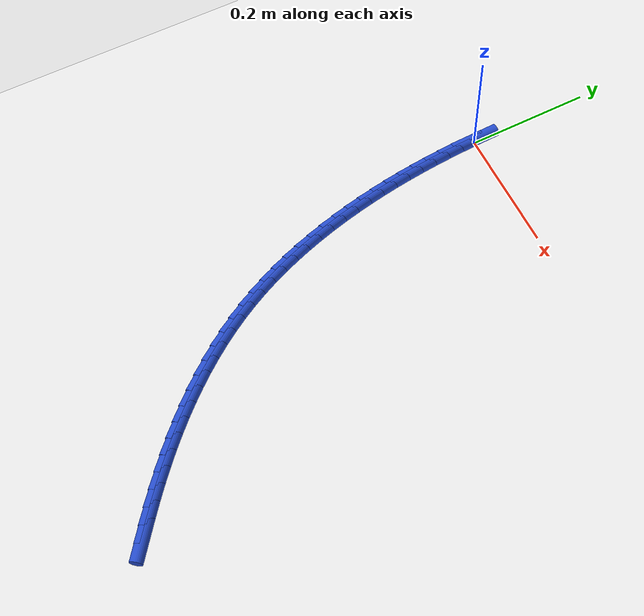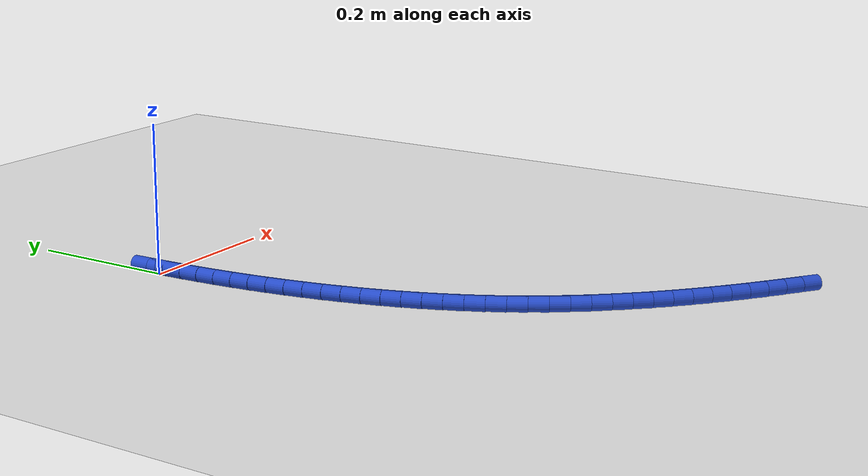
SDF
<sdf version="1.6">
 <world name="default">
  <model name="ground_plane">
   <static>1</static>
   <link name="link">
    <collision name="collision">
     <geometry><plane><normal>0 0 1</normal><size>100 100</size></plane></geometry>
     <surface><friction><ode><mu>100</mu><mu2>50</mu2></ode></friction></surface>
    </collision>
    <visual name="visual">
     <cast_shadows>0</cast_shadows>
     <geometry><plane><normal>0 0 1</normal><size>100 100</size></plane></geometry>
     <material>
      <script><uri>file://media/materials/scripts/gazebo.material</uri><name>Gazebo/WhiteGlow</name></script>
     </material>
    </visual>
   </link>
  </model>
  <model name="line">
   <link name="link_0">
    <pose>-9.432558900623889e-18 4.85722573273506e-17 0.01 0 1.57 -1.5440989932306253</pose>
    <collision name="collision">
     <geometry><cylinder><radius>0.01</radius><length>0.08</length></cylinder></geometry>
    </collision>
    <visual name="visual">
     <material>
      <script><name>Gazebo/Blue</name><uri>file://media/materials/scripts/gazebo.material</uri></script>
     </material>
     <geometry><cylinder><radius>0.01</radius><length>0.08</length></cylinder></geometry>
    </visual>
   </link>
   <link name="link_237">
    <pose>0.36372228921915023 -0.7218449217352954 0.01 0 1.57 -0.6465349389866851</pose>
    <collision name="collision">
     <geometry><cylinder><radius>0.01</radius><length>0.08</length></cylinder></geometry>
    </collision>
    <visual name="visual">
     <material>
      <script><name>Gazebo/Blue</name><uri>file://media/materials/scripts/gazebo.material</uri></script>
     </material>
     <geometry><cylinder><radius>0.01</radius><length>0.08</length></cylinder></geometry>
    </visual>
   </link>
   <link name="link_238">
    <pose>0.34310390192497897 -0.7062831694928421 0.01 0 1.57 -0.6597295838823884</pose>
    <collision name="collision">
     <geometry><cylinder><radius>0.01</radius><length>0.08</length></cylinder></geometry>
    </collision>
    <visual name="visual">
     <material>
      <script><name>Gazebo/Blue</name><uri>file://media/materials/scripts/gazebo.material</uri></script>
     </material>
     <geometry><cylinder><radius>0.01</radius><length>0.08</length></cylinder></geometry>
    </visual>
   </link>
   <link name="link_239">
    <pose>0.3226835436054937 -0.6904436753281677 0.01 0 1.57 -0.6788519430005707</pose>
    <collision name="collision">
     <geometry><cylinder><radius>0.01</radius><length>0.08</length></cylinder></geometry>
    </collision>
    <visual name="visual">
     <material>
      <script><name>Gazebo/Blue</name><uri>file://media/materials/scripts/gazebo.material</uri></script>
     </material>
     <geometry><cylinder><radius>0.01</radius><length>0.08</length></cylinder></geometry>
    </visual>
   </link>
   <link name="link_240">
    <pose>0.3025702603142795 -0.6742169958920953 0.01 0 1.57 -0.7007632244609484</pose>
    <collision name="collision">
     <geometry><cylinder><radius>0.01</radius><length>0.08</length></cylinder></geometry>
    </collision>
    <visual name="visual">
     <material>
      <script><name>Gazebo/Blue</name><uri>file://media/materials/scripts/gazebo.material</uri></script>
     </material>
     <geometry><cylinder><radius>0.01</radius><length>0.08</length></cylinder></geometry>
    </visual>
   </link>
   <link name="link_241">
    <pose>0.28282865347773967 -0.6575630965156987 0.01 0 1.57 -0.7241676684208983</pose>
    <collision name="collision">
     <geometry><cylinder><radius>0.01</radius><length>0.08</length></cylinder></geometry>
    </collision>
    <visual name="visual">
     <material>
      <script><name>Gazebo/Blue</name><uri>file://media/materials/scripts/gazebo.material</uri></script>
     </material>
     <geometry><cylinder><radius>0.01</radius><length>0.08</length></cylinder></geometry>
    </visual>
   </link>
   <link name="link_242">
    <pose>0.2635044393728914 -0.6404714352579243 0.01 0 1.57 -0.7491152092200406</pose>
    <collision name="collision">
     <geometry><cylinder><radius>0.01</radius><length>0.08</length></cylinder></geometry>
    </collision>
    <visual name="visual">
     <material>
      <script><name>Gazebo/Blue</name><uri>file://media/materials/scripts/gazebo.material</uri></script>
     </material>
     <geometry><cylinder><radius>0.01</radius><length>0.08</length></cylinder></geometry>
    </visual>
   </link>
   <link name="link_243">
    <pose>0.2446432652571949 -0.6229315779647986 0.01 0 1.57 -0.7756600971429338</pose>
    <collision name="collision">
     <geometry><cylinder><radius>0.01</radius><length>0.08</length></cylinder></geometry>
    </collision>
    <visual name="visual">
     <material>
      <script><name>Gazebo/Blue</name><uri>file://media/materials/scripts/gazebo.material</uri></script>
     </material>
     <geometry><cylinder><radius>0.01</radius><length>0.08</length></cylinder></geometry>
    </visual>
   </link>
   <link name="link_244">
    <pose>0.22629077838810804 -0.6049330904823468 0.01 0 1.57 -0.8038542631376413</pose>
    <collision name="collision">
     <geometry><cylinder><radius>0.01</radius><length>0.08</length></cylinder></geometry>
    </collision>
    <visual name="visual">
     <material>
      <script><name>Gazebo/Blue</name><uri>file://media/materials/scripts/gazebo.material</uri></script>
     </material>
     <geometry><cylinder><radius>0.01</radius><length>0.08</length></cylinder></geometry>
    </visual>
   </link>
   <link name="link_245">
    <pose>0.20849262602309085 -0.5864655386565959 0.01 0 1.57 -0.8337452706202756</pose>
    <collision name="collision">
     <geometry><cylinder><radius>0.01</radius><length>0.08</length></cylinder></geometry>
    </collision>
    <visual name="visual">
     <material>
      <script><name>Gazebo/Blue</name><uri>file://media/materials/scripts/gazebo.material</uri></script>
     </material>
     <geometry><cylinder><radius>0.01</radius><length>0.08</length></cylinder></geometry>
    </visual>
   </link>
   <link name="link_246">
    <pose>0.19129445541960186 -0.5675184883335712 0.01 0 1.57 -0.8653739079235436</pose>
    <collision name="collision">
     <geometry><cylinder><radius>0.01</radius><length>0.08</length></cylinder></geometry>
    </collision>
    <visual name="visual">
     <material>
      <script><name>Gazebo/Blue</name><uri>file://media/materials/scripts/gazebo.material</uri></script>
     </material>
     <geometry><cylinder><radius>0.01</radius><length>0.08</length></cylinder></geometry>
    </visual>
   </link>
   <link name="link_247">
    <pose>0.17474191383509943 -0.5480815053592979 0.01 0 1.57 -0.8987714182367215</pose>
    <collision name="collision">
     <geometry><cylinder><radius>0.01</radius><length>0.08</length></cylinder></geometry>
    </collision>
    <visual name="visual">
     <material>
      <script><name>Gazebo/Blue</name><uri>file://media/materials/scripts/gazebo.material</uri></script>
     </material>
     <geometry><cylinder><radius>0.01</radius><length>0.08</length></cylinder></geometry>
    </visual>
   </link>
   <link name="link_248">
    <pose>0.15888064852704373 -0.5281441555798037 0.01 0 1.57 -0.933956393683779</pose>
    <collision name="collision">
     <geometry><cylinder><radius>0.01</radius><length>0.08</length></cylinder></geometry>
    </collision>
    <visual name="visual">
     <material>
      <script><name>Gazebo/Blue</name><uri>file://media/materials/scripts/gazebo.material</uri></script>
     </material>
     <geometry><cylinder><radius>0.01</radius><length>0.08</length></cylinder></geometry>
    </visual>
   </link>
   <link name="link_249">
    <pose>0.1437563067528926 -0.5076960048411122 0.01 0 1.57 -0.970931400725383</pose>
    <collision name="collision">
     <geometry><cylinder><radius>0.01</radius><length>0.08</length></cylinder></geometry>
    </collision>
    <visual name="visual">
     <material>
      <script><name>Gazebo/Blue</name><uri>file://media/materials/scripts/gazebo.material</uri></script>
     </material>
     <geometry><cylinder><radius>0.01</radius><length>0.08</length></cylinder></geometry>
    </visual>
   </link>
   <link name="link_250">
    <pose>0.1294145357701061 -0.48672661898925146 0.01 0 1.57 -1.0096794550819643</pose>
    <collision name="collision">
     <geometry><cylinder><radius>0.01</radius><length>0.08</length></cylinder></geometry>
    </collision>
    <visual name="visual">
     <material>
      <script><name>Gazebo/Blue</name><uri>file://media/materials/scripts/gazebo.material</uri></script>
     </material>
     <geometry><cylinder><radius>0.01</radius><length>0.08</length></cylinder></geometry>
    </visual>
   </link>
   <link name="link_251">
    <pose>0.11590098283614227 -0.4652255638702457 0.01 0 1.57 -1.0501500305334122</pose>
    <collision name="collision">
     <geometry><cylinder><radius>0.01</radius><length>0.08</length></cylinder></geometry>
    </collision>
    <visual name="visual">
     <material>
      <script><name>Gazebo/Blue</name><uri>file://media/materials/scripts/gazebo.material</uri></script>
     </material>
     <geometry><cylinder><radius>0.01</radius><length>0.08</length></cylinder></geometry>
    </visual>
   </link>
   <link name="link_252">
    <pose>0.10326109037785888 -0.4431825841083659 0.01 0 1.57 -1.0910512632903007</pose>
    <collision name="collision">
     <geometry><cylinder><radius>0.01</radius><length>0.08</length></cylinder></geometry>
    </collision>
    <visual name="visual">
     <material>
      <script><name>Gazebo/Blue</name><uri>file://media/materials/scripts/gazebo.material</uri></script>
     </material>
     <geometry><cylinder><radius>0.01</radius><length>0.08</length></cylinder></geometry>
    </visual>
   </link>
   <link name="link_253">
    <pose>0.09151611076975683 -0.4206085376528785 0.01 0 1.57 -1.1300038266040495</pose>
    <collision name="collision">
     <geometry><cylinder><radius>0.01</radius><length>0.08</length></cylinder></geometry>
    </collision>
    <visual name="visual">
     <material>
      <script><name>Gazebo/Blue</name><uri>file://media/materials/scripts/gazebo.material</uri></script>
     </material>
     <geometry><cylinder><radius>0.01</radius><length>0.08</length></cylinder></geometry>
    </visual>
   </link>
   <link name="link_254">
    <pose>0.08064063208604016 -0.39755501153141737 0.01 0 1.57 -1.1667962054130498</pose>
    <collision name="collision">
     <geometry><cylinder><radius>0.01</radius><length>0.08</length></cylinder></geometry>
    </collision>
    <visual name="visual">
     <material>
      <script><name>Gazebo/Blue</name><uri>file://media/materials/scripts/gazebo.material</uri></script>
     </material>
     <geometry><cylinder><radius>0.01</radius><length>0.08</length></cylinder></geometry>
    </visual>
   </link>
   <link name="link_255">
    <pose>0.07060392486310724 -0.3740782339729725 0.01 0 1.57 -1.2015061885004397</pose>
    <collision name="collision">
     <geometry><cylinder><radius>0.01</radius><length>0.08</length></cylinder></geometry>
    </collision>
    <visual name="visual">
     <material>
      <script><name>Gazebo/Blue</name><uri>file://media/materials/scripts/gazebo.material</uri></script>
     </material>
     <geometry><cylinder><radius>0.01</radius><length>0.08</length></cylinder></geometry>
    </visual>
   </link>
   <link name="link_256">
    <pose>0.06137525963735756 -0.35023443320653624 0.01 0 1.57 -1.234223150992984</pose>
    <collision name="collision">
     <geometry><cylinder><radius>0.01</radius><length>0.08</length></cylinder></geometry>
    </collision>
    <visual name="visual">
     <material>
      <script><name>Gazebo/Blue</name><uri>file://media/materials/scripts/gazebo.material</uri></script>
     </material>
     <geometry><cylinder><radius>0.01</radius><length>0.08</length></cylinder></geometry>
    </visual>
   </link>
   <link name="link_257">
    <pose>0.05292390694518987 -0.32607983746109925 0.01 0 1.57 -1.2650436354085828</pose>
    <collision name="collision">
     <geometry><cylinder><radius>0.01</radius><length>0.08</length></cylinder></geometry>
    </collision>
    <visual name="visual">
     <material>
      <script><name>Gazebo/Blue</name><uri>file://media/materials/scripts/gazebo.material</uri></script>
     </material>
     <geometry><cylinder><radius>0.01</radius><length>0.08</length></cylinder></geometry>
    </visual>
   </link>
   <link name="link_258">
    <pose>0.04521913732300288 -0.30167067496565186 0.01 0 1.57 -1.294067784949745</pose>
    <collision name="collision">
     <geometry><cylinder><radius>0.01</radius><length>0.08</length></cylinder></geometry>
    </collision>
    <visual name="visual">
     <material>
      <script><name>Gazebo/Blue</name><uri>file://media/materials/scripts/gazebo.material</uri></script>
     </material>
     <geometry><cylinder><radius>0.01</radius><length>0.08</length></cylinder></geometry>
    </visual>
   </link>
   <link name="link_259">
    <pose>0.038230221307196034 -0.27706317394918656 0.01 0 1.57 -1.3213965500895015</pose>
    <collision name="collision">
     <geometry><cylinder><radius>0.01</radius><length>0.08</length></cylinder></geometry>
    </collision>
    <visual name="visual">
     <material>
      <script><name>Gazebo/Blue</name><uri>file://media/materials/scripts/gazebo.material</uri></script>
     </material>
     <geometry><cylinder><radius>0.01</radius><length>0.08</length></cylinder></geometry>
    </visual>
   </link>
   <link name="link_260">
    <pose>0.0319264294341679 -0.2523135626406932 0.01 0 1.57 -1.3471298005748542</pose>
    <collision name="collision">
     <geometry><cylinder><radius>0.01</radius><length>0.08</length></cylinder></geometry>
    </collision>
    <visual name="visual">
     <material>
      <script><name>Gazebo/Blue</name><uri>file://media/materials/scripts/gazebo.material</uri></script>
     </material>
     <geometry><cylinder><radius>0.01</radius><length>0.08</length></cylinder></geometry>
    </visual>
   </link>
   <link name="link_261">
    <pose>0.026277032743473202 -0.2274780444701612 0.01 0 1.57 -1.371514624611035</pose>
    <collision name="collision">
     <geometry><cylinder><radius>0.01</radius><length>0.08</length></cylinder></geometry>
    </collision>
    <visual name="visual">
     <material>
      <script><name>Gazebo/Blue</name><uri>file://media/materials/scripts/gazebo.material</uri></script>
     </material>
     <geometry><cylinder><radius>0.01</radius><length>0.08</length></cylinder></geometry>
    </visual>
   </link>
   <link name="link_262">
    <pose>0.021251657608192018 -0.20259530955460237 0.01 0 1.57 -1.3949707968084692</pose>
    <collision name="collision">
     <geometry><cylinder><radius>0.01</radius><length>0.08</length></cylinder></geometry>
    </collision>
    <visual name="visual">
     <material>
      <script><name>Gazebo/Blue</name><uri>file://media/materials/scripts/gazebo.material</uri></script>
     </material>
     <geometry><cylinder><radius>0.01</radius><length>0.08</length></cylinder></geometry>
    </visual>
   </link>
   <link name="link_263">
    <pose>0.016820908609855984 -0.17765583508009325 0.01 0 1.57 -1.417481223020235</pose>
    <collision name="collision">
     <geometry><cylinder><radius>0.01</radius><length>0.08</length></cylinder></geometry>
    </collision>
    <visual name="visual">
     <material>
      <script><name>Gazebo/Blue</name><uri>file://media/materials/scripts/gazebo.material</uri></script>
     </material>
     <geometry><cylinder><radius>0.01</radius><length>0.08</length></cylinder></geometry>
    </visual>
   </link>
   <link name="link_264">
    <pose>0.012955557207322414 -0.15264187335487167 0.01 0 1.57 -1.4389614471481251</pose>
    <collision name="collision">
     <geometry><cylinder><radius>0.01</radius><length>0.08</length></cylinder></geometry>
    </collision>
    <visual name="visual">
     <material>
      <script><name>Gazebo/Blue</name><uri>file://media/materials/scripts/gazebo.material</uri></script>
     </material>
     <geometry><cylinder><radius>0.01</radius><length>0.08</length></cylinder></geometry>
    </visual>
   </link>
   <link name="link_265">
    <pose>0.00962637485944911 -0.12753567668717838 0.01 0 1.57 -1.459338309671972</pose>
    <collision name="collision">
     <geometry><cylinder><radius>0.01</radius><length>0.08</length></cylinder></geometry>
    </collision>
    <visual name="visual">
     <material>
      <script><name>Gazebo/Blue</name><uri>file://media/materials/scripts/gazebo.material</uri></script>
     </material>
     <geometry><cylinder><radius>0.01</radius><length>0.08</length></cylinder></geometry>
    </visual>
   </link>
   <link name="link_266">
    <pose>0.0068041330250934486 -0.10231949738525117 0.01 0 1.57 -1.4785502609984797</pose>
    <collision name="collision">
     <geometry><cylinder><radius>0.01</radius><length>0.08</length></cylinder></geometry>
    </collision>
    <visual name="visual">
     <material>
      <script><name>Gazebo/Blue</name><uri>file://media/materials/scripts/gazebo.material</uri></script>
     </material>
     <geometry><cylinder><radius>0.01</radius><length>0.08</length></cylinder></geometry>
    </visual>
   </link>
   <link name="link_267">
    <pose>0.004459603163113187 -0.07697558775733095 0.01 0 1.57 -1.4965473518408154</pose>
    <collision name="collision">
     <geometry><cylinder><radius>0.01</radius><length>0.08</length></cylinder></geometry>
    </collision>
    <visual name="visual">
     <material>
      <script><name>Gazebo/Blue</name><uri>file://media/materials/scripts/gazebo.material</uri></script>
     </material>
     <geometry><cylinder><radius>0.01</radius><length>0.08</length></cylinder></geometry>
    </visual>
   </link>
   <link name="link_268">
    <pose>0.002563556732365808 -0.05148620011165625 0.01 0 1.57 -1.5132909448202736</pose>
    <collision name="collision">
     <geometry><cylinder><radius>0.01</radius><length>0.08</length></cylinder></geometry>
    </collision>
    <visual name="visual">
     <material>
      <script><name>Gazebo/Blue</name><uri>file://media/materials/scripts/gazebo.material</uri></script>
     </material>
     <geometry><cylinder><radius>0.01</radius><length>0.08</length></cylinder></geometry>
    </visual>
   </link>
   <link name="link_269">
    <pose>0.0010867651917088527 -0.02583358675646562 0.01 0 1.57 -1.528753199159475</pose>
    <collision name="collision">
     <geometry><cylinder><radius>0.01</radius><length>0.08</length></cylinder></geometry>
    </collision>
    <visual name="visual">
     <material>
      <script><name>Gazebo/Blue</name><uri>file://media/materials/scripts/gazebo.material</uri></script>
     </material>
     <geometry><cylinder><radius>0.01</radius><length>0.08</length></cylinder></geometry>
    </visual>
   </link>
  </model>
 </world>
</sdf>
